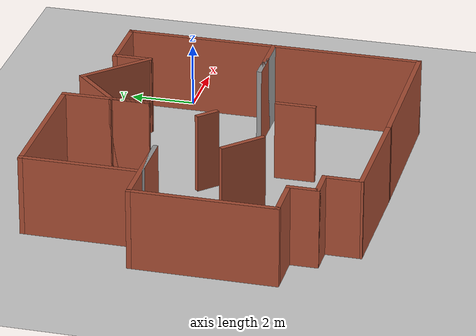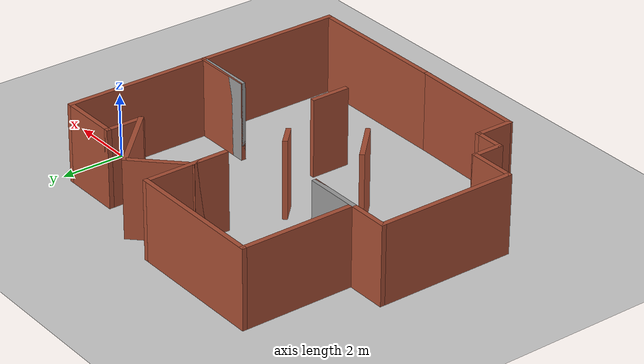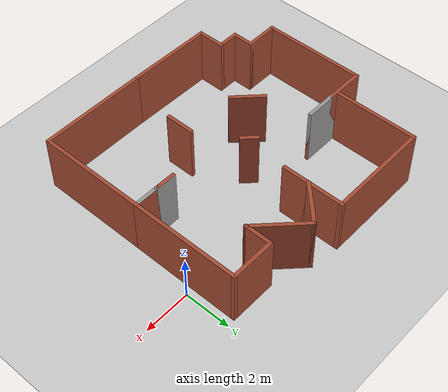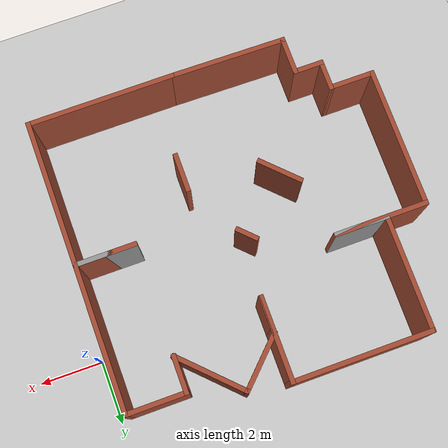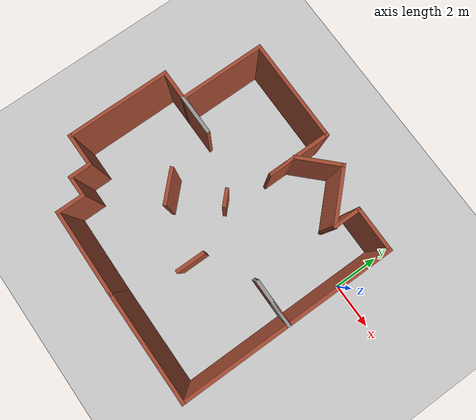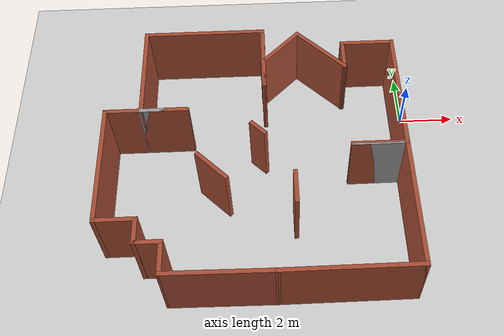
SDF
<sdf version="1.6">
 <world name="default">
  <light name="sun" type="directional">
   <pose>0 0 10 0 -0 0</pose>
   <diffuse>0.8 0.8 0.8 1</diffuse>
   <specular>0.2 0.2 0.2 1</specular>
   <attenuation>
    <range>1000</range>
    <constant>0.9</constant>
    <linear>0.01</linear>
    <quadratic>0.001</quadratic>
   </attenuation>
   <direction>-0.5 0.1 -0.9</direction>
  </light>
  <model name="ground_plane">
   <static>1</static>
   <link name="link">
    <collision name="collision">
     <geometry><plane><normal>0 0 1</normal><size>100 100</size></plane></geometry>
     <surface><friction><ode><mu>100</mu><mu2>50</mu2></ode></friction></surface>
    </collision>
    <visual name="visual">
     <cast_shadows>0</cast_shadows>
     <geometry><plane><normal>0 0 1</normal><size>100 100</size></plane></geometry>
     <material>
      <script><uri>file://media/materials/scripts/gazebo.material</uri><name>Gazebo/Grey</name></script>
     </material>
    </visual>
   </link>
  </model>
  <gravity>0 0 -9.8</gravity>
  <magnetic_field>6e-06 2.3e-05 -4.2e-05</magnetic_field>
  <atmosphere type="adiabatic"/>
  <physics name="default_physics" default="0" type="ode">
   <max_step_size>0.001</max_step_size>
   <real_time_factor>1</real_time_factor>
   <real_time_update_rate>1000</real_time_update_rate>
  </physics>
  <scene><ambient>0.4 0.4 0.4 1</ambient><background>0.7 0.7 0.7 1</background><shadows>1</shadows></scene>
  <spherical_coordinates>
   <surface_model>EARTH_WGS84</surface_model>
   <latitude_deg>0</latitude_deg>
   <longitude_deg>0</longitude_deg>
   <elevation>0</elevation>
   <heading_deg>0</heading_deg>
  </spherical_coordinates>
  <model name="smallroom">
   <pose>-5.59437 -2.3253 0 0 -0 0</pose>
   <link name="Wall_1">
    <collision name="Wall_1_Collision">
     <geometry><box><size>4.75 0.15 2.5</size></box></geometry>
     <pose>0 0 1.25 0 -0 0</pose>
    </collision>
    <visual name="Wall_1_Visual">
     <pose>0 0 1.25 0 -0 0</pose>
     <geometry><box><size>4.75 0.15 2.5</size></box></geometry>
     <material>
      <script><uri>file://media/materials/scripts/gazebo.material</uri><name>Gazebo/Bricks</name></script>
      <ambient>1 1 1 1</ambient>
     </material>
     <meta><layer>0</layer></meta>
    </visual>
    <pose>2.90992 -4.97623 0 0 -0 0</pose>
   </link>
   <link name="Wall_10">
    <collision name="Wall_10_Collision">
     <geometry><box><size>1.25 0.15 2.5</size></box></geometry>
     <pose>0 0 1.25 0 -0 0</pose>
    </collision>
    <visual name="Wall_10_Visual">
     <pose>0 0 1.25 0 -0 0</pose>
     <geometry><box><size>1.25 0.15 2.5</size></box></geometry>
     <material>
      <script><uri>file://media/materials/scripts/gazebo.material</uri><name>Gazebo/Bricks</name></script>
      <ambient>1 1 1 1</ambient>
     </material>
     <meta><layer>0</layer></meta>
    </visual>
    <pose>0.390075 2.92733 0 0 -0 -1.5708</pose>
   </link>
   <link name="Wall_11">
    <collision name="Wall_11_Collision">
     <geometry><box><size>2.75 0.15 2.5</size></box></geometry>
     <pose>0 0 1.25 0 -0 0</pose>
    </collision>
    <visual name="Wall_11_Visual">
     <pose>0 0 1.25 0 -0 0</pose>
     <geometry><box><size>2.75 0.15 2.5</size></box></geometry>
     <material>
      <script><uri>file://media/materials/scripts/gazebo.material</uri><name>Gazebo/Bricks</name></script>
      <ambient>1 1 1 1</ambient>
     </material>
     <meta><layer>0</layer></meta>
    </visual>
    <pose>0.390075 3.67733 0 0 -0 1.5708</pose>
   </link>
   <link name="Wall_12">
    <collision name="Wall_12_Collision">
     <geometry><box><size>4.5 0.15 2.5</size></box></geometry>
     <pose>0 0 1.25 0 -0 0</pose>
    </collision>
    <visual name="Wall_12_Visual">
     <pose>0 0 1.25 0 -0 0</pose>
     <geometry><box><size>4.5 0.15 2.5</size></box></geometry>
     <material>
      <script><uri>file://media/materials/scripts/gazebo.material</uri><name>Gazebo/Bricks</name></script>
      <ambient>1 1 1 1</ambient>
     </material>
     <meta><layer>0</layer></meta>
    </visual>
    <pose>-1.78492 4.97733 0 0 -0 3.14159</pose>
   </link>
   <link name="Wall_13">
    <collision name="Wall_13_Collision">
     <geometry><box><size>3.75 0.15 2.5</size></box></geometry>
     <pose>0 0 1.25 0 -0 0</pose>
    </collision>
    <visual name="Wall_13_Visual">
     <pose>0 0 1.25 0 -0 0</pose>
     <geometry><box><size>3.75 0.15 2.5</size></box></geometry>
     <material>
      <script><uri>file://media/materials/scripts/gazebo.material</uri><name>Gazebo/Bricks</name></script>
      <ambient>1 1 1 1</ambient>
     </material>
     <meta><layer>0</layer></meta>
    </visual>
    <pose>-3.95992 3.17733 0 0 -0 -1.5708</pose>
   </link>
   <link name="Wall_14">
    <collision name="Wall_14_Collision">
     <geometry><box><size>1.75 0.15 2.5</size></box></geometry>
     <pose>0 0 1.25 0 -0 0</pose>
    </collision>
    <visual name="Wall_14_Visual">
     <pose>0 0 1.25 0 -0 0</pose>
     <geometry><box><size>1.75 0.15 2.5</size></box></geometry>
     <material>
      <script><uri>file://media/materials/scripts/gazebo.material</uri><name>Gazebo/Grey</name></script>
      <ambient>1 1 1 1</ambient>
     </material>
     <meta><layer>0</layer></meta>
    </visual>
    <pose>-3.15992 1.37733 0 0 -0 0</pose>
   </link>
   <link name="Wall_15">
    <collision name="Wall_15_Collision">
     <geometry><box><size>3 0.15 2.5</size></box></geometry>
     <pose>0 0 1.25 0 -0 0</pose>
    </collision>
    <visual name="Wall_15_Visual">
     <pose>0 0 1.25 0 -0 0</pose>
     <geometry><box><size>3 0.15 2.5</size></box></geometry>
     <material>
      <script><uri>file://media/materials/scripts/gazebo.material</uri><name>Gazebo/Bricks</name></script>
      <ambient>1 1 1 1</ambient>
     </material>
     <meta><layer>0</layer></meta>
    </visual>
    <pose>-3.78492 1.37733 0 0 -0 3.14159</pose>
   </link>
   <link name="Wall_16">
    <collision name="Wall_16_Collision">
     <geometry><box><size>4.5 0.15 2.5</size></box></geometry>
     <pose>0 0 1.25 0 -0 0</pose>
    </collision>
    <visual name="Wall_16_Visual">
     <pose>0 0 1.25 0 -0 0</pose>
     <geometry><box><size>4.5 0.15 2.5</size></box></geometry>
     <material>
      <script><uri>file://media/materials/scripts/gazebo.material</uri><name>Gazebo/Bricks</name></script>
      <ambient>1 1 1 1</ambient>
     </material>
     <meta><layer>0</layer></meta>
    </visual>
    <pose>-5.20992 -0.797673 0 0 -0 -1.5708</pose>
   </link>
   <link name="Wall_17">
    <collision name="Wall_17_Collision">
     <geometry><box><size>1.5 0.15 2.5</size></box></geometry>
     <pose>0 0 1.25 0 -0 0</pose>
    </collision>
    <visual name="Wall_17_Visual">
     <pose>0 0 1.25 0 -0 0</pose>
     <geometry><box><size>1.5 0.15 2.5</size></box></geometry>
     <material>
      <script><uri>file://media/materials/scripts/gazebo.material</uri><name>Gazebo/Bricks</name></script>
      <ambient>1 1 1 1</ambient>
     </material>
     <meta><layer>0</layer></meta>
    </visual>
    <pose>-4.53492 -2.97267 0 0 -0 0</pose>
   </link>
   <link name="Wall_18">
    <collision name="Wall_18_Collision">
     <geometry><box><size>1 0.15 2.5</size></box></geometry>
     <pose>0 0 1.25 0 -0 0</pose>
    </collision>
    <visual name="Wall_18_Visual">
     <pose>0 0 1.25 0 -0 0</pose>
     <geometry><box><size>1 0.15 2.5</size></box></geometry>
     <material>
      <script><uri>file://media/materials/scripts/gazebo.material</uri><name>Gazebo/Bricks</name></script>
      <ambient>1 1 1 1</ambient>
     </material>
     <meta><layer>0</layer></meta>
    </visual>
    <pose>-3.85992 -3.39767 0 0 -0 -1.5708</pose>
   </link>
   <link name="Wall_19">
    <collision name="Wall_19_Collision">
     <geometry><box><size>1 0.15 2.5</size></box></geometry>
     <pose>0 0 1.25 0 -0 0</pose>
    </collision>
    <visual name="Wall_19_Visual">
     <pose>0 0 1.25 0 -0 0</pose>
     <geometry><box><size>1 0.15 2.5</size></box></geometry>
     <material>
      <script><uri>file://media/materials/scripts/gazebo.material</uri><name>Gazebo/Bricks</name></script>
      <ambient>1 1 1 1</ambient>
     </material>
     <meta><layer>0</layer></meta>
    </visual>
    <pose>-3.43492 -3.82267 0 0 -0 0</pose>
   </link>
   <link name="Wall_2">
    <collision name="Wall_2_Collision">
     <geometry><box><size>4.75 0.15 2.5</size></box></geometry>
     <pose>0 0 1.25 0 -0 0</pose>
    </collision>
    <visual name="Wall_2_Visual">
     <pose>0 0 1.25 0 -0 0</pose>
     <geometry><box><size>4.75 0.15 2.5</size></box></geometry>
     <material>
      <script><uri>file://media/materials/scripts/gazebo.material</uri><name>Gazebo/Bricks</name></script>
      <ambient>1 1 1 1</ambient>
     </material>
     <meta><layer>0</layer></meta>
    </visual>
    <pose>5.20992 -2.67623 0 0 -0 1.5708</pose>
   </link>
   <link name="Wall_20">
    <collision name="Wall_20_Collision">
     <geometry><box><size>1.25 0.15 2.5</size></box></geometry>
     <pose>0 0 1.25 0 -0 0</pose>
    </collision>
    <visual name="Wall_20_Visual">
     <pose>0 0 1.25 0 -0 0</pose>
     <geometry><box><size>1.25 0.15 2.5</size></box></geometry>
     <material>
      <script><uri>file://media/materials/scripts/gazebo.material</uri><name>Gazebo/Bricks</name></script>
      <ambient>1 1 1 1</ambient>
     </material>
     <meta><layer>0</layer></meta>
    </visual>
    <pose>-3.00992 -4.37267 0 0 -0 -1.5708</pose>
   </link>
   <link name="Wall_21">
    <collision name="Wall_21_Collision">
     <geometry><box><size>3.77025 0.15 2.5</size></box></geometry>
     <pose>0 0 1.25 0 -0 0</pose>
    </collision>
    <visual name="Wall_21_Visual">
     <pose>0 0 1.25 0 -0 0</pose>
     <geometry><box><size>3.77025 0.15 2.5</size></box></geometry>
     <material>
      <script><uri>file://media/materials/scripts/gazebo.material</uri><name>Gazebo/Bricks</name></script>
      <ambient>1 1 1 1</ambient>
     </material>
     <meta><layer>0</layer></meta>
    </visual>
    <pose>-1.2 -4.94945 0 0 -0 -0.014793</pose>
   </link>
   <link name="Wall_23">
    <collision name="Wall_23_Collision">
     <geometry><box><size>1.5 0.15 2.5</size></box></geometry>
     <pose>0 0 1.25 0 -0 0</pose>
    </collision>
    <visual name="Wall_23_Visual">
     <pose>0 0 1.25 0 -0 0</pose>
     <geometry><box><size>1.5 0.15 2.5</size></box></geometry>
     <material>
      <script><uri>file://media/materials/scripts/gazebo.material</uri><name>Gazebo/Bricks</name></script>
      <ambient>1 1 1 1</ambient>
     </material>
     <meta><layer>0</layer></meta>
    </visual>
    <pose>-1.46577 -1.03475 0 0 -0 -0.785398</pose>
   </link>
   <link name="Wall_25">
    <collision name="Wall_25_Collision">
     <geometry><box><size>1.25 0.15 2.5</size></box></geometry>
     <pose>0 0 1.25 0 -0 0</pose>
    </collision>
    <visual name="Wall_25_Visual">
     <pose>0 0 1.25 0 -0 0</pose>
     <geometry><box><size>1.25 0.15 2.5</size></box></geometry>
     <material>
      <script><uri>file://media/materials/scripts/gazebo.material</uri><name>Gazebo/Bricks</name></script>
      <ambient>1 1 1 1</ambient>
     </material>
     <meta><layer>0</layer></meta>
    </visual>
    <pose>1.32876 -1.97586 0 0 -0 1.5708</pose>
   </link>
   <link name="Wall_29">
    <collision name="Wall_29_Collision">
     <geometry><box><size>0.75 0.15 2.5</size></box></geometry>
     <pose>0 0 1.25 0 -0 0</pose>
    </collision>
    <visual name="Wall_29_Visual">
     <pose>0 0 1.25 0 -0 0</pose>
     <geometry><box><size>0.75 0.15 2.5</size></box></geometry>
     <material>
      <script><uri>file://media/materials/scripts/gazebo.material</uri><name>Gazebo/Bricks</name></script>
      <ambient>1 1 1 1</ambient>
     </material>
     <meta><layer>0</layer></meta>
    </visual>
    <pose>0.131081 0.454026 0 0 -0 -0.785398</pose>
   </link>
   <link name="Wall_3">
    <collision name="Wall_3_Collision">
     <geometry><box><size>2 0.15 2.5</size></box></geometry>
     <pose>0 0 1.25 0 -0 0</pose>
    </collision>
    <visual name="Wall_3_Visual">
     <pose>0 0 1.25 0 -0 0</pose>
     <geometry><box><size>2 0.15 2.5</size></box></geometry>
     <material>
      <script><uri>file://media/materials/scripts/gazebo.material</uri><name>Gazebo/Grey</name></script>
      <ambient>1 1 1 1</ambient>
     </material>
     <meta><layer>0</layer></meta>
    </visual>
    <pose>4.28492 -0.376226 0 0 -0 3.14159</pose>
   </link>
   <link name="Wall_4">
    <collision name="Wall_4_Collision">
     <geometry><box><size>2 0.15 2.5</size></box></geometry>
     <pose>0 0 1.25 0 -0 0</pose>
    </collision>
    <visual name="Wall_4_Visual">
     <pose>0 0 1.25 0 -0 0</pose>
     <geometry><box><size>2 0.15 2.5</size></box></geometry>
     <material>
      <script><uri>file://media/materials/scripts/gazebo.material</uri><name>Gazebo/Bricks</name></script>
      <ambient>1 1 1 1</ambient>
     </material>
     <meta><layer>0</layer></meta>
    </visual>
    <pose>4.28492 -0.376226 0 0 -0 0</pose>
   </link>
   <link name="Wall_5">
    <collision name="Wall_5_Collision">
     <geometry><box><size>4.75 0.15 2.5</size></box></geometry>
     <pose>0 0 1.25 0 -0 0</pose>
    </collision>
    <visual name="Wall_5_Visual">
     <pose>0 0 1.25 0 -0 0</pose>
     <geometry><box><size>4.75 0.15 2.5</size></box></geometry>
     <material>
      <script><uri>file://media/materials/scripts/gazebo.material</uri><name>Gazebo/Bricks</name></script>
      <ambient>1 1 1 1</ambient>
     </material>
     <meta><layer>0</layer></meta>
    </visual>
    <pose>5.20992 1.92377 0 0 -0 1.5708</pose>
   </link>
   <link name="Wall_6">
    <collision name="Wall_6_Collision">
     <geometry><box><size>2 0.15 2.5</size></box></geometry>
     <pose>0 0 1.25 0 -0 0</pose>
    </collision>
    <visual name="Wall_6_Visual">
     <pose>0 0 1.25 0 -0 0</pose>
     <geometry><box><size>2 0.15 2.5</size></box></geometry>
     <material>
      <script><uri>file://media/materials/scripts/gazebo.material</uri><name>Gazebo/Bricks</name></script>
      <ambient>1 1 1 1</ambient>
     </material>
     <meta><layer>0</layer></meta>
    </visual>
    <pose>4.28492 4.22377 0 0 -0 3.14159</pose>
   </link>
   <link name="Wall_7">
    <collision name="Wall_7_Collision">
     <geometry><box><size>1.25 0.15 2.5</size></box></geometry>
     <pose>0 0 1.25 0 -0 0</pose>
    </collision>
    <visual name="Wall_7_Visual">
     <pose>0 0 1.25 0 -0 0</pose>
     <geometry><box><size>1.25 0.15 2.5</size></box></geometry>
     <material>
      <script><uri>file://media/materials/scripts/gazebo.material</uri><name>Gazebo/Bricks</name></script>
      <ambient>1 1 1 1</ambient>
     </material>
     <meta><layer>0</layer></meta>
    </visual>
    <pose>3.35992 3.67377 0 0 -0 -1.5708</pose>
   </link>
   <link name="Wall_8">
    <collision name="Wall_8_Collision">
     <geometry><box><size>2.5 0.15 2.5</size></box></geometry>
     <pose>0 0 1.25 0 -0 0</pose>
    </collision>
    <visual name="Wall_8_Visual">
     <pose>0 0 1.25 0 -0 0</pose>
     <geometry><box><size>2.5 0.15 2.5</size></box></geometry>
     <material>
      <script><uri>file://media/materials/scripts/gazebo.material</uri><name>Gazebo/Bricks</name></script>
      <ambient>1 1 1 1</ambient>
     </material>
     <meta><layer>0</layer></meta>
    </visual>
    <pose>2.52907 3.95462 0 0 -0 2.35619</pose>
   </link>
   <link name="Wall_9">
    <collision name="Wall_9_Collision">
     <geometry><box><size>2 0.15 2.5</size></box></geometry>
     <pose>0 0 1.25 0 -0 0</pose>
    </collision>
    <visual name="Wall_9_Visual">
     <pose>0 0 1.25 0 -0 0</pose>
     <geometry><box><size>2 0.15 2.5</size></box></geometry>
     <material>
      <script><uri>file://media/materials/scripts/gazebo.material</uri><name>Gazebo/Bricks</name></script>
      <ambient>1 1 1 1</ambient>
     </material>
     <meta><layer>0</layer></meta>
    </visual>
    <pose>1.04415 4.1314 0 0 -0 -2.35619</pose>
   </link>
   <static>1</static>
  </model>
 </world>
</sdf>
